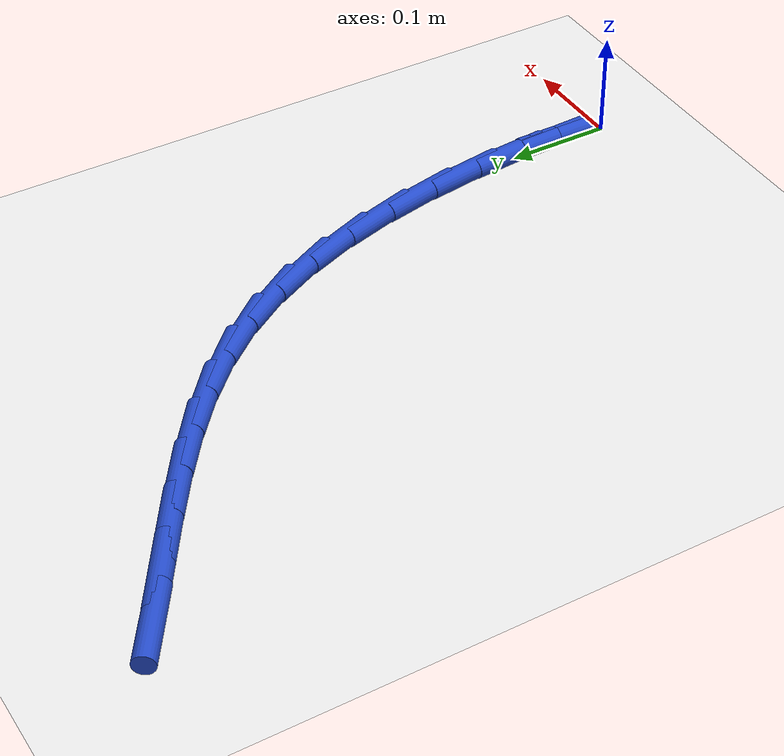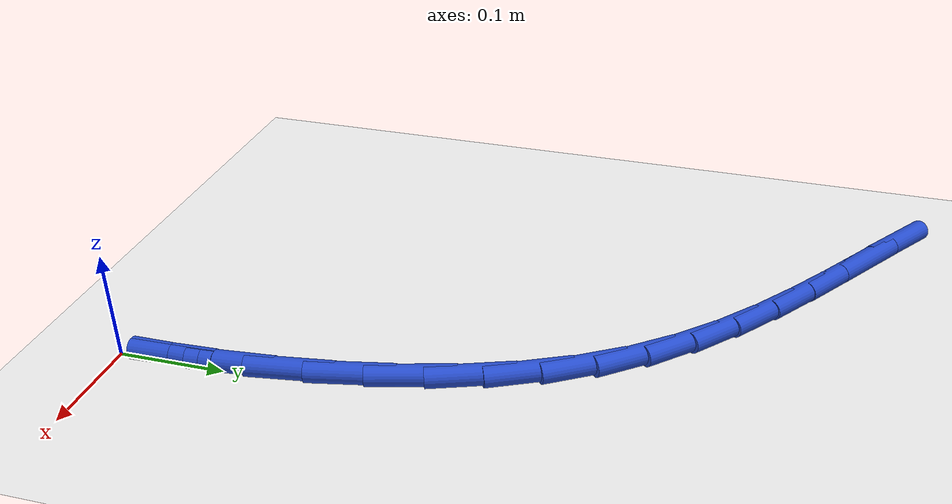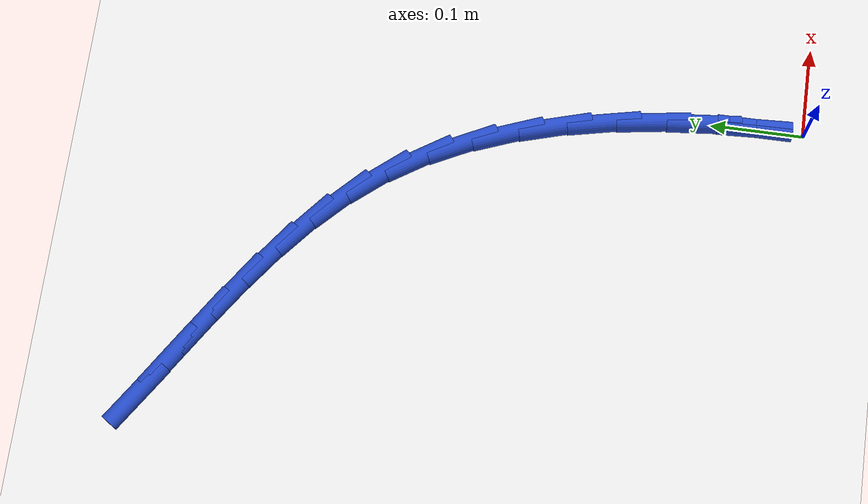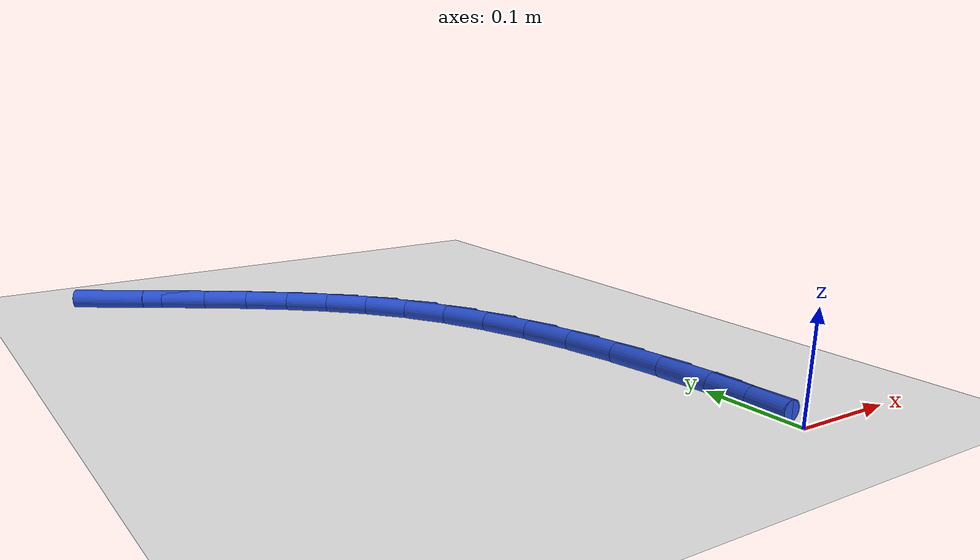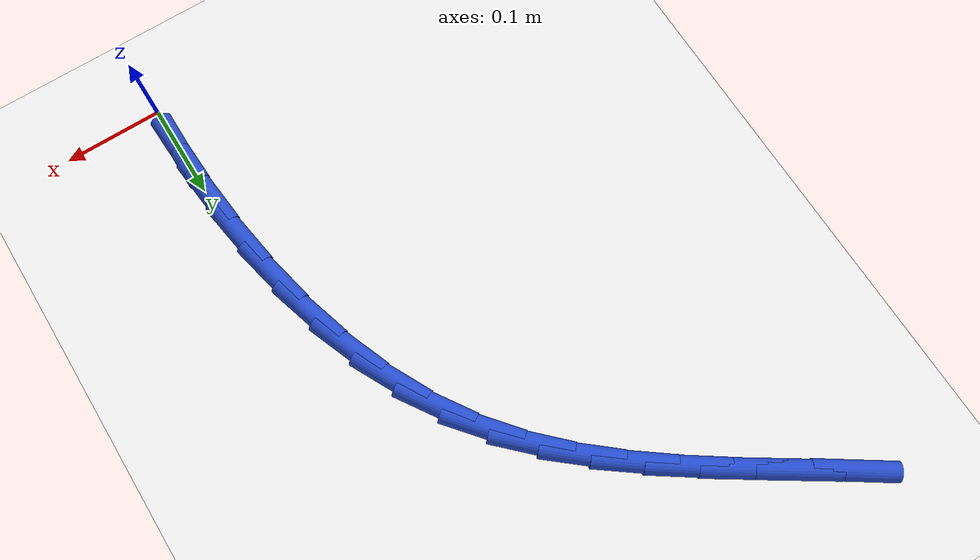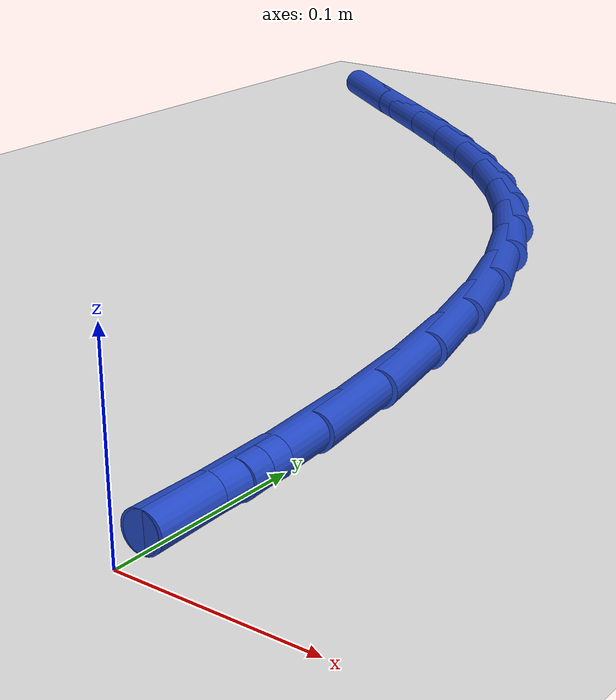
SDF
<sdf version="1.6">
 <world name="default">
  <model name="ground_plane">
   <static>1</static>
   <link name="link">
    <collision name="collision">
     <geometry><plane><normal>0 0 1</normal><size>100 100</size></plane></geometry>
     <surface><friction><ode><mu>100</mu><mu2>50</mu2></ode></friction></surface>
    </collision>
    <visual name="visual">
     <cast_shadows>0</cast_shadows>
     <geometry><plane><normal>0 0 1</normal><size>100 100</size></plane></geometry>
     <material>
      <script><uri>file://media/materials/scripts/gazebo.material</uri><name>Gazebo/WhiteGlow</name></script>
     </material>
    </visual>
   </link>
  </model>
  <model name="line">
   <link name="link_1">
    <pose>-6.065359261570258e-06 0.05388972046839372 0.01 0 1.57 -1.5262894574556105</pose>
    <collision name="collision">
     <geometry><cylinder><radius>0.01</radius><length>0.08</length></cylinder></geometry>
    </collision>
    <visual name="visual">
     <material>
      <script><name>Gazebo/Blue</name><uri>file://media/materials/scripts/gazebo.material</uri></script>
     </material>
     <geometry><cylinder><radius>0.01</radius><length>0.08</length></cylinder></geometry>
    </visual>
   </link>
   <link name="link_2">
    <pose>-0.0024095332956994902 0.10785623807598792 0.01 0 1.57 -1.4769604596576116</pose>
    <collision name="collision">
     <geometry><cylinder><radius>0.01</radius><length>0.08</length></cylinder></geometry>
    </collision>
    <visual name="visual">
     <material>
      <script><name>Gazebo/Blue</name><uri>file://media/materials/scripts/gazebo.material</uri></script>
     </material>
     <geometry><cylinder><radius>0.01</radius><length>0.08</length></cylinder></geometry>
    </visual>
   </link>
   <link name="link_3">
    <pose>-0.0074465998001762915 0.16137813643352678 0.01 0 1.57 -1.4214694452902707</pose>
    <collision name="collision">
     <geometry><cylinder><radius>0.01</radius><length>0.08</length></cylinder></geometry>
    </collision>
    <visual name="visual">
     <material>
      <script><name>Gazebo/Blue</name><uri>file://media/materials/scripts/gazebo.material</uri></script>
     </material>
     <geometry><cylinder><radius>0.01</radius><length>0.08</length></cylinder></geometry>
    </visual>
   </link>
   <link name="link_4">
    <pose>-0.015353460863554455 0.21393399915175437 0.01 0 1.57 -1.3583999256860129</pose>
    <collision name="collision">
     <geometry><cylinder><radius>0.01</radius><length>0.08</length></cylinder></geometry>
    </collision>
    <visual name="visual">
     <material>
      <script><name>Gazebo/Blue</name><uri>file://media/materials/scripts/gazebo.material</uri></script>
     </material>
     <geometry><cylinder><radius>0.01</radius><length>0.08</length></cylinder></geometry>
    </visual>
   </link>
   <link name="link_5">
    <pose>-0.026366312476696505 0.26500240984141504 0.01 0 1.57 -1.2861382163552393</pose>
    <collision name="collision">
     <geometry><cylinder><radius>0.01</radius><length>0.08</length></cylinder></geometry>
    </collision>
    <visual name="visual">
     <material>
      <script><name>Gazebo/Blue</name><uri>file://media/materials/scripts/gazebo.material</uri></script>
     </material>
     <geometry><cylinder><radius>0.01</radius><length>0.08</length></cylinder></geometry>
    </visual>
   </link>
   <link name="link_6">
    <pose>-0.040721350630464934 0.3140619521132529 0.01 0 1.57 -1.2029196158675228</pose>
    <collision name="collision">
     <geometry><cylinder><radius>0.01</radius><length>0.08</length></cylinder></geometry>
    </collision>
    <visual name="visual">
     <material>
      <script><name>Gazebo/Blue</name><uri>file://media/materials/scripts/gazebo.material</uri></script>
     </material>
     <geometry><cylinder><radius>0.01</radius><length>0.08</length></cylinder></geometry>
    </visual>
   </link>
   <link name="link_7">
    <pose>-0.058654771315722214 0.36059120957801205 0.01 0 1.57 -1.1069790616883945</pose>
    <collision name="collision">
     <geometry><cylinder><radius>0.01</radius><length>0.08</length></cylinder></geometry>
    </collision>
    <visual name="visual">
     <material>
      <script><name>Gazebo/Blue</name><uri>file://media/materials/scripts/gazebo.material</uri></script>
     </material>
     <geometry><cylinder><radius>0.01</radius><length>0.08</length></cylinder></geometry>
    </visual>
   </link>
   <link name="link_8">
    <pose>-0.08040277052333086 0.4040687658464368 0.01 0 1.57 -0.996958390001971</pose>
    <collision name="collision">
     <geometry><cylinder><radius>0.01</radius><length>0.08</length></cylinder></geometry>
    </collision>
    <visual name="visual">
     <material>
      <script><name>Gazebo/Blue</name><uri>file://media/materials/scripts/gazebo.material</uri></script>
     </material>
     <geometry><cylinder><radius>0.01</radius><length>0.08</length></cylinder></geometry>
    </visual>
   </link>
   <link name="link_9">
    <pose>-0.10619921828798255 0.44397684366696755 0.01 0 1.57 -0.8817575596938176</pose>
    <collision name="collision">
     <geometry><cylinder><radius>0.01</radius><length>0.08</length></cylinder></geometry>
    </collision>
    <visual name="visual">
     <material>
      <script><name>Gazebo/Blue</name><uri>file://media/materials/scripts/gazebo.material</uri></script>
     </material>
     <geometry><cylinder><radius>0.01</radius><length>0.08</length></cylinder></geometry>
    </visual>
   </link>
   <link name="link_10">
    <pose>-0.13602789926728126 0.4801889436351819 0.01 0 1.57 -0.7816309510672206</pose>
    <collision name="collision">
     <geometry><cylinder><radius>0.01</radius><length>0.08</length></cylinder></geometry>
    </collision>
    <visual name="visual">
     <material>
      <script><name>Gazebo/Blue</name><uri>file://media/materials/scripts/gazebo.material</uri></script>
     </material>
     <geometry><cylinder><radius>0.01</radius><length>0.08</length></cylinder></geometry>
    </visual>
   </link>
   <link name="link_11">
    <pose>-0.1694029077207042 0.5133134331746986 0.01 0 1.57 -0.7012972215751669</pose>
    <collision name="collision">
     <geometry><cylinder><radius>0.01</radius><length>0.08</length></cylinder></geometry>
    </collision>
    <visual name="visual">
     <material>
      <script><name>Gazebo/Blue</name><uri>file://media/materials/scripts/gazebo.material</uri></script>
     </material>
     <geometry><cylinder><radius>0.01</radius><length>0.08</length></cylinder></geometry>
    </visual>
   </link>
   <link name="link_12">
    <pose>-0.20578654305830904 0.5440397167430072 0.01 0 1.57 -0.6414647554955005</pose>
    <collision name="collision">
     <geometry><cylinder><radius>0.01</radius><length>0.08</length></cylinder></geometry>
    </collision>
    <visual name="visual">
     <material>
      <script><name>Gazebo/Blue</name><uri>file://media/materials/scripts/gazebo.material</uri></script>
     </material>
     <geometry><cylinder><radius>0.01</radius><length>0.08</length></cylinder></geometry>
    </visual>
   </link>
   <link name="link_13">
    <pose>-0.24464110469015338 0.5730571987975979 0.01 0 1.57 -0.601562473619099</pose>
    <collision name="collision">
     <geometry><cylinder><radius>0.01</radius><length>0.08</length></cylinder></geometry>
    </collision>
    <visual name="visual">
     <material>
      <script><name>Gazebo/Blue</name><uri>file://media/materials/scripts/gazebo.material</uri></script>
     </material>
     <geometry><cylinder><radius>0.01</radius><length>0.08</length></cylinder></geometry>
    </visual>
   </link>
   <link name="link_14">
    <pose>-0.2854288920262947 0.6010552837959603 0.01 0 1.57 -0.580512630095227</pose>
    <collision name="collision">
     <geometry><cylinder><radius>0.01</radius><length>0.08</length></cylinder></geometry>
    </collision>
    <visual name="visual">
     <material>
      <script><name>Gazebo/Blue</name><uri>file://media/materials/scripts/gazebo.material</uri></script>
     </material>
     <geometry><cylinder><radius>0.01</radius><length>0.08</length></cylinder></geometry>
    </visual>
   </link>
   <link name="link_15">
    <pose>-0.3276122044767906 0.6287233761955842 0.01 0 1.57 -0.5772039184290051</pose>
    <collision name="collision">
     <geometry><cylinder><radius>0.01</radius><length>0.08</length></cylinder></geometry>
    </collision>
    <visual name="visual">
     <material>
      <script><name>Gazebo/Blue</name><uri>file://media/materials/scripts/gazebo.material</uri></script>
     </material>
     <geometry><cylinder><radius>0.01</radius><length>0.08</length></cylinder></geometry>
    </visual>
   </link>
   <link name="link_16">
    <pose>-0.3706533414516988 0.6567508804539598 0.01 0 1.57 -0.5906930429041665</pose>
    <collision name="collision">
     <geometry><cylinder><radius>0.01</radius><length>0.08</length></cylinder></geometry>
    </collision>
    <visual name="visual">
     <material>
      <script><name>Gazebo/Blue</name><uri>file://media/materials/scripts/gazebo.material</uri></script>
     </material>
     <geometry><cylinder><radius>0.01</radius><length>0.08</length></cylinder></geometry>
    </visual>
   </link>
   <link name="link_141">
    <pose>4.348719655014946e-05 0.05395818345627128 0.01 0 1.57 1.5699903844086074</pose>
    <collision name="collision">
     <geometry><cylinder><radius>0.01</radius><length>0.08</length></cylinder></geometry>
    </collision>
    <visual name="visual">
     <material>
      <script><name>Gazebo/Blue</name><uri>file://media/materials/scripts/gazebo.material</uri></script>
     </material>
     <geometry><cylinder><radius>0.01</radius><length>0.08</length></cylinder></geometry>
    </visual>
   </link>
  </model>
 </world>
</sdf>
